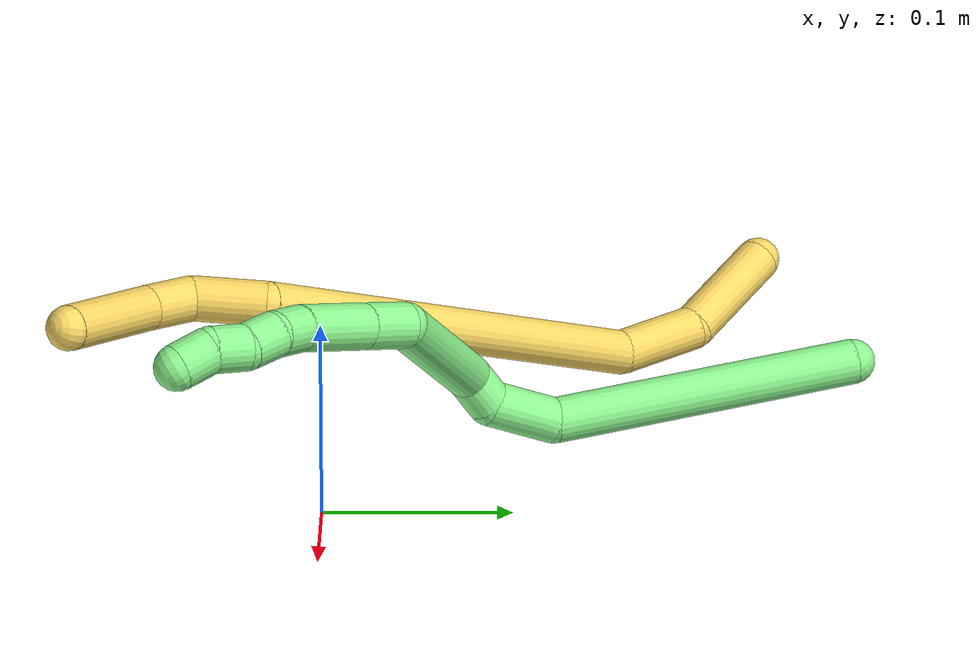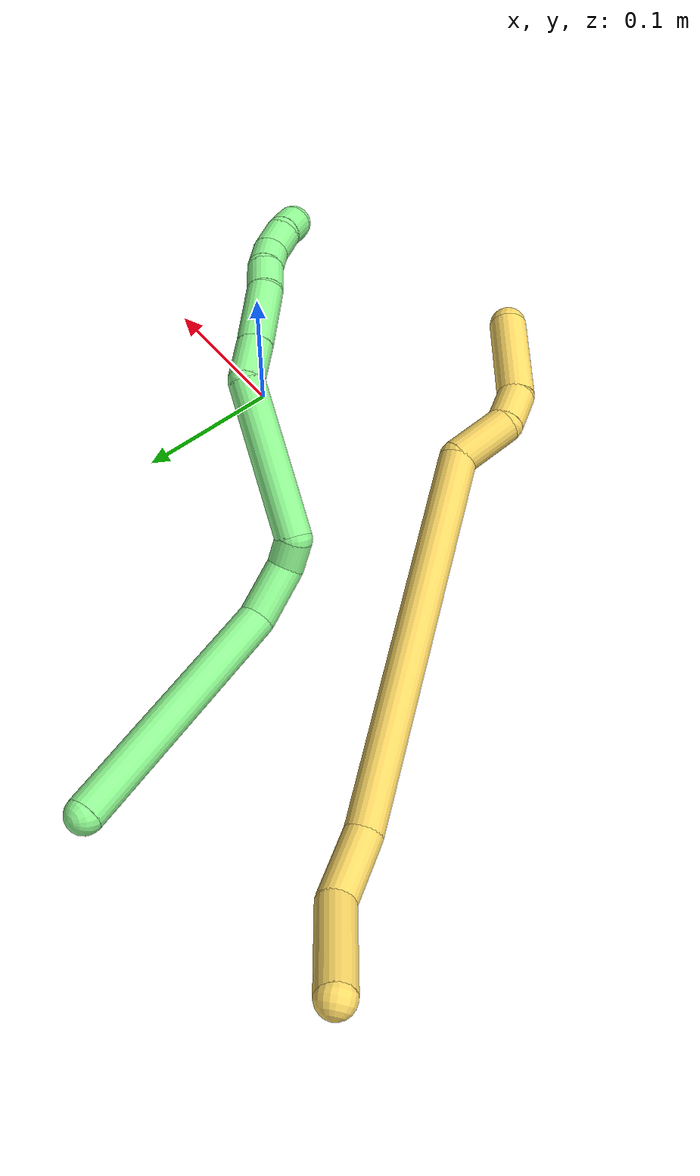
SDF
<sdf version="1.7">
 <world name="default">
  <model name="5">
   <static>0</static>
   <link name="5">
    <collision name="collision-cylinder-e_1_1_4">
     <pose>-0.009091 -0.01816 -0.027391 2.55614 -0.269884 -0.846505</pose>
     <geometry><cylinder><radius>0.0125</radius><length>0.068196</length></cylinder></geometry>
     <surface>
      <friction><ode><mu>1.16</mu><mu2>1.16</mu2><slip1>0</slip1><slip2>0</slip2></ode></friction>
      <contact><ode><kp>1e+06</kp><kd>1</kd><max_vel>0</max_vel><min_depth>0.001</min_depth></ode></contact>
     </surface>
    </collision>
    <visual name="visual-cylinder-e_1_1_4">
     <pose>-0.009091 -0.01816 -0.027391 2.55614 -0.269884 -0.846505</pose>
     <geometry><cylinder><radius>0.0125</radius><length>0.068196</length></cylinder></geometry>
     <material><ambient>1 0.858824 0.4 1</ambient></material>
    </visual>
    <collision name="collision-cylinder-e_2_4_5">
     <pose>-0.015731 -0.045215 -0.077417 2.76712 0.100463 0.518756</pose>
     <geometry><cylinder><radius>0.0125</radius><length>0.048888</length></cylinder></geometry>
     <surface>
      <friction><ode><mu>1.16</mu><mu2>1.16</mu2><slip1>0</slip1><slip2>0</slip2></ode></friction>
      <contact><ode><kp>1e+06</kp><kd>1</kd><max_vel>0</max_vel><min_depth>0.001</min_depth></ode></contact>
     </surface>
    </collision>
    <visual name="visual-cylinder-e_2_4_5">
     <pose>-0.015731 -0.045215 -0.077417 2.76712 0.100463 0.518756</pose>
     <geometry><cylinder><radius>0.0125</radius><length>0.048888</length></cylinder></geometry>
     <material><ambient>1 0.858824 0.4 1</ambient></material>
    </visual>
    <collision name="collision-cylinder-e_3_5_6">
     <pose>-0.002085 -0.046454 -0.224368 -3.08007 0.089635 -1.93895</pose>
     <geometry><cylinder><radius>0.0125</radius><length>0.250106</length></cylinder></geometry>
     <surface>
      <friction><ode><mu>1.16</mu><mu2>1.16</mu2><slip1>0</slip1><slip2>0</slip2></ode></friction>
      <contact><ode><kp>1e+06</kp><kd>1</kd><max_vel>0</max_vel><min_depth>0.001</min_depth></ode></contact>
     </surface>
    </collision>
    <visual name="visual-cylinder-e_3_5_6">
     <pose>-0.002085 -0.046454 -0.224368 -3.08007 0.089635 -1.93895</pose>
     <geometry><cylinder><radius>0.0125</radius><length>0.250106</length></cylinder></geometry>
     <material><ambient>1 0.858824 0.4 1</ambient></material>
    </visual>
    <collision name="collision-cylinder-e_4_6_7">
     <pose>0.021928 -0.042306 -0.364242 2.91976 0.677007 2.5288</pose>
     <geometry><cylinder><radius>0.0125</radius><length>0.040924</length></cylinder></geometry>
     <surface>
      <friction><ode><mu>1.16</mu><mu2>1.16</mu2><slip1>0</slip1><slip2>0</slip2></ode></friction>
      <contact><ode><kp>1e+06</kp><kd>1</kd><max_vel>0</max_vel><min_depth>0.001</min_depth></ode></contact>
     </surface>
    </collision>
    <visual name="visual-cylinder-e_4_6_7">
     <pose>0.021928 -0.042306 -0.364242 2.91976 0.677007 2.5288</pose>
     <geometry><cylinder><radius>0.0125</radius><length>0.040924</length></cylinder></geometry>
     <material><ambient>1 0.858824 0.4 1</ambient></material>
    </visual>
    <collision name="collision-cylinder-e_5_7_8">
     <pose>0.036459 -0.049571 -0.393012 2.86464 0.124061 0.838481</pose>
     <geometry><cylinder><radius>0.0125</radius><length>0.027684</length></cylinder></geometry>
     <surface>
      <friction><ode><mu>1.16</mu><mu2>1.16</mu2><slip1>0</slip1><slip2>0</slip2></ode></friction>
      <contact><ode><kp>1e+06</kp><kd>1</kd><max_vel>0</max_vel><min_depth>0.001</min_depth></ode></contact>
     </surface>
    </collision>
    <visual name="visual-cylinder-e_5_7_8">
     <pose>0.036459 -0.049571 -0.393012 2.86464 0.124061 0.838481</pose>
     <geometry><cylinder><radius>0.0125</radius><length>0.027684</length></cylinder></geometry>
     <material><ambient>1 0.858824 0.4 1</ambient></material>
    </visual>
    <collision name="collision-cylinder-e_6_8_2">
     <pose>0.031033 -0.057076 -0.437295 3.02149 -0.224289 -2.16086</pose>
     <geometry><cylinder><radius>0.0125</radius><length>0.064202</length></cylinder></geometry>
     <surface>
      <friction><ode><mu>1.16</mu><mu2>1.16</mu2><slip1>0</slip1><slip2>0</slip2></ode></friction>
      <contact><ode><kp>1e+06</kp><kd>1</kd><max_vel>0</max_vel><min_depth>0.001</min_depth></ode></contact>
     </surface>
    </collision>
    <visual name="visual-cylinder-e_6_8_2">
     <pose>0.031033 -0.057076 -0.437295 3.02149 -0.224289 -2.16086</pose>
     <geometry><cylinder><radius>0.0125</radius><length>0.064202</length></cylinder></geometry>
     <material><ambient>1 0.858824 0.4 1</ambient></material>
    </visual>
    <collision name="collision-sphere-2">
     <pose>0.023893 -0.060826 -0.468367 0 -0 0</pose>
     <geometry><sphere><radius>0.0125</radius></sphere></geometry>
     <surface>
      <friction><ode><mu>1.16</mu><mu2>1.16</mu2><slip1>0</slip1><slip2>0</slip2></ode></friction>
      <contact><ode><kp>1e+06</kp><kd>1</kd><max_vel>0</max_vel><min_depth>0.001</min_depth></ode></contact>
     </surface>
    </collision>
    <visual name="visual-sphere-2">
     <pose>0.023893 -0.060826 -0.468367 0 -0 0</pose>
     <geometry><sphere><radius>0.0125</radius></sphere></geometry>
     <material><ambient>1 0.858824 0.4 1</ambient></material>
    </visual>
    <collision name="collision-sphere-4">
     <pose>-0.018182 -0.036319 -0.054781 0 -0 0</pose>
     <geometry><sphere><radius>0.0125</radius></sphere></geometry>
     <surface>
      <friction><ode><mu>1.16</mu><mu2>1.16</mu2><slip1>0</slip1><slip2>0</slip2></ode></friction>
      <contact><ode><kp>1e+06</kp><kd>1</kd><max_vel>0</max_vel><min_depth>0.001</min_depth></ode></contact>
     </surface>
    </collision>
    <visual name="visual-sphere-4">
     <pose>-0.018182 -0.036319 -0.054781 0 -0 0</pose>
     <geometry><sphere><radius>0.0125</radius></sphere></geometry>
     <material><ambient>1 0.858824 0.4 1</ambient></material>
    </visual>
    <collision name="collision-sphere-1">
     <geometry><sphere><radius>0.0125</radius></sphere></geometry>
     <surface>
      <friction><ode><mu>1.16</mu><mu2>1.16</mu2><slip1>0</slip1><slip2>0</slip2></ode></friction>
      <contact><ode><kp>1e+06</kp><kd>1</kd><max_vel>0</max_vel><min_depth>0.001</min_depth></ode></contact>
     </surface>
    </collision>
    <visual name="visual-sphere-1">
     <geometry><sphere><radius>0.0125</radius></sphere></geometry>
     <material><ambient>1 0.858824 0.4 1</ambient></material>
    </visual>
    <collision name="collision-sphere-8">
     <pose>0.038172 -0.053326 -0.406224 0 -0 0</pose>
     <geometry><sphere><radius>0.0125</radius></sphere></geometry>
     <surface>
      <friction><ode><mu>1.16</mu><mu2>1.16</mu2><slip1>0</slip1><slip2>0</slip2></ode></friction>
      <contact><ode><kp>1e+06</kp><kd>1</kd><max_vel>0</max_vel><min_depth>0.001</min_depth></ode></contact>
     </surface>
    </collision>
    <visual name="visual-sphere-8">
     <pose>0.038172 -0.053326 -0.406224 0 -0 0</pose>
     <geometry><sphere><radius>0.0125</radius></sphere></geometry>
     <material><ambient>1 0.858824 0.4 1</ambient></material>
    </visual>
    <collision name="collision-sphere-5">
     <pose>-0.013279 -0.054112 -0.100052 0 -0 0</pose>
     <geometry><sphere><radius>0.0125</radius></sphere></geometry>
     <surface>
      <friction><ode><mu>1.16</mu><mu2>1.16</mu2><slip1>0</slip1><slip2>0</slip2></ode></friction>
      <contact><ode><kp>1e+06</kp><kd>1</kd><max_vel>0</max_vel><min_depth>0.001</min_depth></ode></contact>
     </surface>
    </collision>
    <visual name="visual-sphere-5">
     <pose>-0.013279 -0.054112 -0.100052 0 -0 0</pose>
     <geometry><sphere><radius>0.0125</radius></sphere></geometry>
     <material><ambient>1 0.858824 0.4 1</ambient></material>
    </visual>
    <collision name="collision-sphere-6">
     <pose>0.009109 -0.038797 -0.348683 0 -0 0</pose>
     <geometry><sphere><radius>0.0125</radius></sphere></geometry>
     <surface>
      <friction><ode><mu>1.16</mu><mu2>1.16</mu2><slip1>0</slip1><slip2>0</slip2></ode></friction>
      <contact><ode><kp>1e+06</kp><kd>1</kd><max_vel>0</max_vel><min_depth>0.001</min_depth></ode></contact>
     </surface>
    </collision>
    <visual name="visual-sphere-6">
     <pose>0.009109 -0.038797 -0.348683 0 -0 0</pose>
     <geometry><sphere><radius>0.0125</radius></sphere></geometry>
     <material><ambient>1 0.858824 0.4 1</ambient></material>
    </visual>
    <collision name="collision-sphere-7">
     <pose>0.034747 -0.045815 -0.3798 0 -0 0</pose>
     <geometry><sphere><radius>0.0125</radius></sphere></geometry>
     <surface>
      <friction><ode><mu>1.16</mu><mu2>1.16</mu2><slip1>0</slip1><slip2>0</slip2></ode></friction>
      <contact><ode><kp>1e+06</kp><kd>1</kd><max_vel>0</max_vel><min_depth>0.001</min_depth></ode></contact>
     </surface>
    </collision>
    <visual name="visual-sphere-7">
     <pose>0.034747 -0.045815 -0.3798 0 -0 0</pose>
     <geometry><sphere><radius>0.0125</radius></sphere></geometry>
     <material><ambient>1 0.858824 0.4 1</ambient></material>
    </visual>
    <inertial>
     <pose>0.003977 -0.043671 -0.23126 0 -0 0</pose>
     <mass>0.5</mass>
     <inertia>
      <ixx>-0.001707</ixx>
      <ixy>0</ixy>
      <ixz>0</ixz>
      <iyy>-0.00078</iyy>
      <iyz>0</iyz>
      <izz>-0.000203</izz>
     </inertia>
    </inertial>
   </link>
   <pose>-0.387292 0.243612 0.05095 1.74074 -0.185913 -2.4652</pose>
  </model>
  <model name="13">
   <static>0</static>
   <link name="13">
    <collision name="collision-cylinder-e_1_1_4">
     <pose>0.019723 -0.033496 -0.078223 2.73701 0.227758 1.0174</pose>
     <geometry><cylinder><radius>0.0125</radius><length>0.174698</length></cylinder></geometry>
     <surface>
      <friction><ode><mu>1.16</mu><mu2>1.16</mu2><slip1>0</slip1><slip2>0</slip2></ode></friction>
      <contact><ode><kp>1e+06</kp><kd>1</kd><max_vel>0</max_vel><min_depth>0.001</min_depth></ode></contact>
     </surface>
    </collision>
    <visual name="visual-cylinder-e_1_1_4">
     <pose>0.019723 -0.033496 -0.078223 2.73701 0.227758 1.0174</pose>
     <geometry><cylinder><radius>0.0125</radius><length>0.174698</length></cylinder></geometry>
     <material><ambient>0.564706 0.984314 0.572549 1</ambient></material>
    </visual>
    <collision name="collision-cylinder-e_2_4_5">
     <pose>0.044987 -0.081581 -0.168682 2.26869 0.283202 0.5932</pose>
     <geometry><cylinder><radius>0.0125</radius><length>0.039661</length></cylinder></geometry>
     <surface>
      <friction><ode><mu>1.16</mu><mu2>1.16</mu2><slip1>0</slip1><slip2>0</slip2></ode></friction>
      <contact><ode><kp>1e+06</kp><kd>1</kd><max_vel>0</max_vel><min_depth>0.001</min_depth></ode></contact>
     </surface>
    </collision>
    <visual name="visual-cylinder-e_2_4_5">
     <pose>0.044987 -0.081581 -0.168682 2.26869 0.283202 0.5932</pose>
     <geometry><cylinder><radius>0.0125</radius><length>0.039661</length></cylinder></geometry>
     <material><ambient>0.564706 0.984314 0.572549 1</ambient></material>
    </visual>
    <collision name="collision-cylinder-e_3_5_6">
     <pose>0.052855 -0.106012 -0.181997 1.68 0.230794 0.257204</pose>
     <geometry><cylinder><radius>0.0125</radius><length>0.020343</length></cylinder></geometry>
     <surface>
      <friction><ode><mu>1.16</mu><mu2>1.16</mu2><slip1>0</slip1><slip2>0</slip2></ode></friction>
      <contact><ode><kp>1e+06</kp><kd>1</kd><max_vel>0</max_vel><min_depth>0.001</min_depth></ode></contact>
     </surface>
    </collision>
    <visual name="visual-cylinder-e_3_5_6">
     <pose>0.052855 -0.106012 -0.181997 1.68 0.230794 0.257204</pose>
     <geometry><cylinder><radius>0.0125</radius><length>0.020343</length></cylinder></geometry>
     <material><ambient>0.564706 0.984314 0.572549 1</ambient></material>
    </visual>
    <collision name="collision-cylinder-e_4_6_7">
     <pose>0.100593 -0.146491 -0.188795 1.75534 0.969331 1.13001</pose>
     <geometry><cylinder><radius>0.0125</radius><length>0.110154</length></cylinder></geometry>
     <surface>
      <friction><ode><mu>1.16</mu><mu2>1.16</mu2><slip1>0</slip1><slip2>0</slip2></ode></friction>
      <contact><ode><kp>1e+06</kp><kd>1</kd><max_vel>0</max_vel><min_depth>0.001</min_depth></ode></contact>
     </surface>
    </collision>
    <visual name="visual-cylinder-e_4_6_7">
     <pose>0.100593 -0.146491 -0.188795 1.75534 0.969331 1.13001</pose>
     <geometry><cylinder><radius>0.0125</radius><length>0.110154</length></cylinder></geometry>
     <material><ambient>0.564706 0.984314 0.572549 1</ambient></material>
    </visual>
    <collision name="collision-cylinder-e_5_7_8">
     <pose>0.154718 -0.184402 -0.203635 2.4683 0.641494 1.51877</pose>
     <geometry><cylinder><radius>0.0125</radius><length>0.029122</length></cylinder></geometry>
     <surface>
      <friction><ode><mu>1.16</mu><mu2>1.16</mu2><slip1>0</slip1><slip2>0</slip2></ode></friction>
      <contact><ode><kp>1e+06</kp><kd>1</kd><max_vel>0</max_vel><min_depth>0.001</min_depth></ode></contact>
     </surface>
    </collision>
    <visual name="visual-cylinder-e_5_7_8">
     <pose>0.154718 -0.184402 -0.203635 2.4683 0.641494 1.51877</pose>
     <geometry><cylinder><radius>0.0125</radius><length>0.029122</length></cylinder></geometry>
     <material><ambient>0.564706 0.984314 0.572549 1</ambient></material>
    </visual>
    <collision name="collision-cylinder-e_6_8_9">
     <pose>0.17755 -0.202694 -0.226387 2.46189 0.678081 1.56821</pose>
     <geometry><cylinder><radius>0.0125</radius><length>0.045013</length></cylinder></geometry>
     <surface>
      <friction><ode><mu>1.16</mu><mu2>1.16</mu2><slip1>0</slip1><slip2>0</slip2></ode></friction>
      <contact><ode><kp>1e+06</kp><kd>1</kd><max_vel>0</max_vel><min_depth>0.001</min_depth></ode></contact>
     </surface>
    </collision>
    <visual name="visual-cylinder-e_6_8_9">
     <pose>0.17755 -0.202694 -0.226387 2.46189 0.678081 1.56821</pose>
     <geometry><cylinder><radius>0.0125</radius><length>0.045013</length></cylinder></geometry>
     <material><ambient>0.564706 0.984314 0.572549 1</ambient></material>
    </visual>
    <collision name="collision-cylinder-e_7_9_10">
     <pose>0.199287 -0.217328 -0.246018 2.59901 0.827398 2.01215</pose>
     <geometry><cylinder><radius>0.0125</radius><length>0.0207</length></cylinder></geometry>
     <surface>
      <friction><ode><mu>1.16</mu><mu2>1.16</mu2><slip1>0</slip1><slip2>0</slip2></ode></friction>
      <contact><ode><kp>1e+06</kp><kd>1</kd><max_vel>0</max_vel><min_depth>0.001</min_depth></ode></contact>
     </surface>
    </collision>
    <visual name="visual-cylinder-e_7_9_10">
     <pose>0.199287 -0.217328 -0.246018 2.59901 0.827398 2.01215</pose>
     <geometry><cylinder><radius>0.0125</radius><length>0.0207</length></cylinder></geometry>
     <material><ambient>0.564706 0.984314 0.572549 1</ambient></material>
    </visual>
    <collision name="collision-cylinder-e_8_10_11">
     <pose>0.213048 -0.223132 -0.259795 2.86746 0.649958 2.36446</pose>
     <geometry><cylinder><radius>0.0125</radius><length>0.020297</length></cylinder></geometry>
     <surface>
      <friction><ode><mu>1.16</mu><mu2>1.16</mu2><slip1>0</slip1><slip2>0</slip2></ode></friction>
      <contact><ode><kp>1e+06</kp><kd>1</kd><max_vel>0</max_vel><min_depth>0.001</min_depth></ode></contact>
     </surface>
    </collision>
    <visual name="visual-cylinder-e_8_10_11">
     <pose>0.213048 -0.223132 -0.259795 2.86746 0.649958 2.36446</pose>
     <geometry><cylinder><radius>0.0125</radius><length>0.020297</length></cylinder></geometry>
     <material><ambient>0.564706 0.984314 0.572549 1</ambient></material>
    </visual>
    <collision name="collision-cylinder-e_9_11_12">
     <pose>0.222932 -0.23021 -0.275453 2.58618 0.38351 1.19576</pose>
     <geometry><cylinder><radius>0.0125</radius><length>0.020001</length></cylinder></geometry>
     <surface>
      <friction><ode><mu>1.16</mu><mu2>1.16</mu2><slip1>0</slip1><slip2>0</slip2></ode></friction>
      <contact><ode><kp>1e+06</kp><kd>1</kd><max_vel>0</max_vel><min_depth>0.001</min_depth></ode></contact>
     </surface>
    </collision>
    <visual name="visual-cylinder-e_9_11_12">
     <pose>0.222932 -0.23021 -0.275453 2.58618 0.38351 1.19576</pose>
     <geometry><cylinder><radius>0.0125</radius><length>0.020001</length></cylinder></geometry>
     <material><ambient>0.564706 0.984314 0.572549 1</ambient></material>
    </visual>
    <collision name="collision-cylinder-e_10_12_2">
     <pose>0.230522 -0.236354 -0.292483 3.0054 0.394802 2.48431</pose>
     <geometry><cylinder><radius>0.0125</radius><length>0.02001</length></cylinder></geometry>
     <surface>
      <friction><ode><mu>1.16</mu><mu2>1.16</mu2><slip1>0</slip1><slip2>0</slip2></ode></friction>
      <contact><ode><kp>1e+06</kp><kd>1</kd><max_vel>0</max_vel><min_depth>0.001</min_depth></ode></contact>
     </surface>
    </collision>
    <visual name="visual-cylinder-e_10_12_2">
     <pose>0.230522 -0.236354 -0.292483 3.0054 0.394802 2.48431</pose>
     <geometry><cylinder><radius>0.0125</radius><length>0.02001</length></cylinder></geometry>
     <material><ambient>0.564706 0.984314 0.572549 1</ambient></material>
    </visual>
    <collision name="collision-sphere-2">
     <pose>0.23437 -0.237608 -0.301632 0 -0 0</pose>
     <geometry><sphere><radius>0.0125</radius></sphere></geometry>
     <surface>
      <friction><ode><mu>1.16</mu><mu2>1.16</mu2><slip1>0</slip1><slip2>0</slip2></ode></friction>
      <contact><ode><kp>1e+06</kp><kd>1</kd><max_vel>0</max_vel><min_depth>0.001</min_depth></ode></contact>
     </surface>
    </collision>
    <visual name="visual-sphere-2">
     <pose>0.23437 -0.237608 -0.301632 0 -0 0</pose>
     <geometry><sphere><radius>0.0125</radius></sphere></geometry>
     <material><ambient>0.564706 0.984314 0.572549 1</ambient></material>
    </visual>
    <collision name="collision-sphere-12">
     <pose>0.226674 -0.2351 -0.283333 0 -0 0</pose>
     <geometry><sphere><radius>0.0125</radius></sphere></geometry>
     <surface>
      <friction><ode><mu>1.16</mu><mu2>1.16</mu2><slip1>0</slip1><slip2>0</slip2></ode></friction>
      <contact><ode><kp>1e+06</kp><kd>1</kd><max_vel>0</max_vel><min_depth>0.001</min_depth></ode></contact>
     </surface>
    </collision>
    <visual name="visual-sphere-12">
     <pose>0.226674 -0.2351 -0.283333 0 -0 0</pose>
     <geometry><sphere><radius>0.0125</radius></sphere></geometry>
     <material><ambient>0.564706 0.984314 0.572549 1</ambient></material>
    </visual>
    <collision name="collision-sphere-11">
     <pose>0.21919 -0.225319 -0.267572 0 -0 0</pose>
     <geometry><sphere><radius>0.0125</radius></sphere></geometry>
     <surface>
      <friction><ode><mu>1.16</mu><mu2>1.16</mu2><slip1>0</slip1><slip2>0</slip2></ode></friction>
      <contact><ode><kp>1e+06</kp><kd>1</kd><max_vel>0</max_vel><min_depth>0.001</min_depth></ode></contact>
     </surface>
    </collision>
    <visual name="visual-sphere-11">
     <pose>0.21919 -0.225319 -0.267572 0 -0 0</pose>
     <geometry><sphere><radius>0.0125</radius></sphere></geometry>
     <material><ambient>0.564706 0.984314 0.572549 1</ambient></material>
    </visual>
    <collision name="collision-sphere-10">
     <pose>0.206907 -0.220945 -0.252017 0 -0 0</pose>
     <geometry><sphere><radius>0.0125</radius></sphere></geometry>
     <surface>
      <friction><ode><mu>1.16</mu><mu2>1.16</mu2><slip1>0</slip1><slip2>0</slip2></ode></friction>
      <contact><ode><kp>1e+06</kp><kd>1</kd><max_vel>0</max_vel><min_depth>0.001</min_depth></ode></contact>
     </surface>
    </collision>
    <visual name="visual-sphere-10">
     <pose>0.206907 -0.220945 -0.252017 0 -0 0</pose>
     <geometry><sphere><radius>0.0125</radius></sphere></geometry>
     <material><ambient>0.564706 0.984314 0.572549 1</ambient></material>
    </visual>
    <collision name="collision-sphere-9">
     <pose>0.191668 -0.213711 -0.240019 0 -0 0</pose>
     <geometry><sphere><radius>0.0125</radius></sphere></geometry>
     <surface>
      <friction><ode><mu>1.16</mu><mu2>1.16</mu2><slip1>0</slip1><slip2>0</slip2></ode></friction>
      <contact><ode><kp>1e+06</kp><kd>1</kd><max_vel>0</max_vel><min_depth>0.001</min_depth></ode></contact>
     </surface>
    </collision>
    <visual name="visual-sphere-9">
     <pose>0.191668 -0.213711 -0.240019 0 -0 0</pose>
     <geometry><sphere><radius>0.0125</radius></sphere></geometry>
     <material><ambient>0.564706 0.984314 0.572549 1</ambient></material>
    </visual>
    <collision name="collision-sphere-4">
     <pose>0.039446 -0.066992 -0.156447 0 -0 0</pose>
     <geometry><sphere><radius>0.0125</radius></sphere></geometry>
     <surface>
      <friction><ode><mu>1.16</mu><mu2>1.16</mu2><slip1>0</slip1><slip2>0</slip2></ode></friction>
      <contact><ode><kp>1e+06</kp><kd>1</kd><max_vel>0</max_vel><min_depth>0.001</min_depth></ode></contact>
     </surface>
    </collision>
    <visual name="visual-sphere-4">
     <pose>0.039446 -0.066992 -0.156447 0 -0 0</pose>
     <geometry><sphere><radius>0.0125</radius></sphere></geometry>
     <material><ambient>0.564706 0.984314 0.572549 1</ambient></material>
    </visual>
    <collision name="collision-sphere-1">
     <geometry><sphere><radius>0.0125</radius></sphere></geometry>
     <surface>
      <friction><ode><mu>1.16</mu><mu2>1.16</mu2><slip1>0</slip1><slip2>0</slip2></ode></friction>
      <contact><ode><kp>1e+06</kp><kd>1</kd><max_vel>0</max_vel><min_depth>0.001</min_depth></ode></contact>
     </surface>
    </collision>
    <visual name="visual-sphere-1">
     <geometry><sphere><radius>0.0125</radius></sphere></geometry>
     <material><ambient>0.564706 0.984314 0.572549 1</ambient></material>
    </visual>
    <collision name="collision-sphere-8">
     <pose>0.163431 -0.191677 -0.212755 0 -0 0</pose>
     <geometry><sphere><radius>0.0125</radius></sphere></geometry>
     <surface>
      <friction><ode><mu>1.16</mu><mu2>1.16</mu2><slip1>0</slip1><slip2>0</slip2></ode></friction>
      <contact><ode><kp>1e+06</kp><kd>1</kd><max_vel>0</max_vel><min_depth>0.001</min_depth></ode></contact>
     </surface>
    </collision>
    <visual name="visual-sphere-8">
     <pose>0.163431 -0.191677 -0.212755 0 -0 0</pose>
     <geometry><sphere><radius>0.0125</radius></sphere></geometry>
     <material><ambient>0.564706 0.984314 0.572549 1</ambient></material>
    </visual>
    <collision name="collision-sphere-5">
     <pose>0.050528 -0.096169 -0.180918 0 -0 0</pose>
     <geometry><sphere><radius>0.0125</radius></sphere></geometry>
     <surface>
      <friction><ode><mu>1.16</mu><mu2>1.16</mu2><slip1>0</slip1><slip2>0</slip2></ode></friction>
      <contact><ode><kp>1e+06</kp><kd>1</kd><max_vel>0</max_vel><min_depth>0.001</min_depth></ode></contact>
     </surface>
    </collision>
    <visual name="visual-sphere-5">
     <pose>0.050528 -0.096169 -0.180918 0 -0 0</pose>
     <geometry><sphere><radius>0.0125</radius></sphere></geometry>
     <material><ambient>0.564706 0.984314 0.572549 1</ambient></material>
    </visual>
    <collision name="collision-sphere-6">
     <pose>0.055182 -0.115855 -0.183076 0 -0 0</pose>
     <geometry><sphere><radius>0.0125</radius></sphere></geometry>
     <surface>
      <friction><ode><mu>1.16</mu><mu2>1.16</mu2><slip1>0</slip1><slip2>0</slip2></ode></friction>
      <contact><ode><kp>1e+06</kp><kd>1</kd><max_vel>0</max_vel><min_depth>0.001</min_depth></ode></contact>
     </surface>
    </collision>
    <visual name="visual-sphere-6">
     <pose>0.055182 -0.115855 -0.183076 0 -0 0</pose>
     <geometry><sphere><radius>0.0125</radius></sphere></geometry>
     <material><ambient>0.564706 0.984314 0.572549 1</ambient></material>
    </visual>
    <collision name="collision-sphere-7">
     <pose>0.146005 -0.177127 -0.194514 0 -0 0</pose>
     <geometry><sphere><radius>0.0125</radius></sphere></geometry>
     <surface>
      <friction><ode><mu>1.16</mu><mu2>1.16</mu2><slip1>0</slip1><slip2>0</slip2></ode></friction>
      <contact><ode><kp>1e+06</kp><kd>1</kd><max_vel>0</max_vel><min_depth>0.001</min_depth></ode></contact>
     </surface>
    </collision>
    <visual name="visual-sphere-7">
     <pose>0.146005 -0.177127 -0.194514 0 -0 0</pose>
     <geometry><sphere><radius>0.0125</radius></sphere></geometry>
     <material><ambient>0.564706 0.984314 0.572549 1</ambient></material>
    </visual>
    <inertial>
     <pose>0.09481 -0.120472 -0.165406 0 -0 0</pose>
     <mass>0.5</mass>
     <inertia>
      <ixx>0.000733</ixx>
      <ixy>0</ixy>
      <ixz>0</ixz>
      <iyy>0.000329</iyy>
      <iyz>0</iyz>
      <izz>1.8e-05</izz>
     </inertia>
    </inertial>
   </link>
   <pose>-0.209515 0.288505 0.032034 -1.03873 -0.027672 0.079784</pose>
  </model>
 </world>
</sdf>
